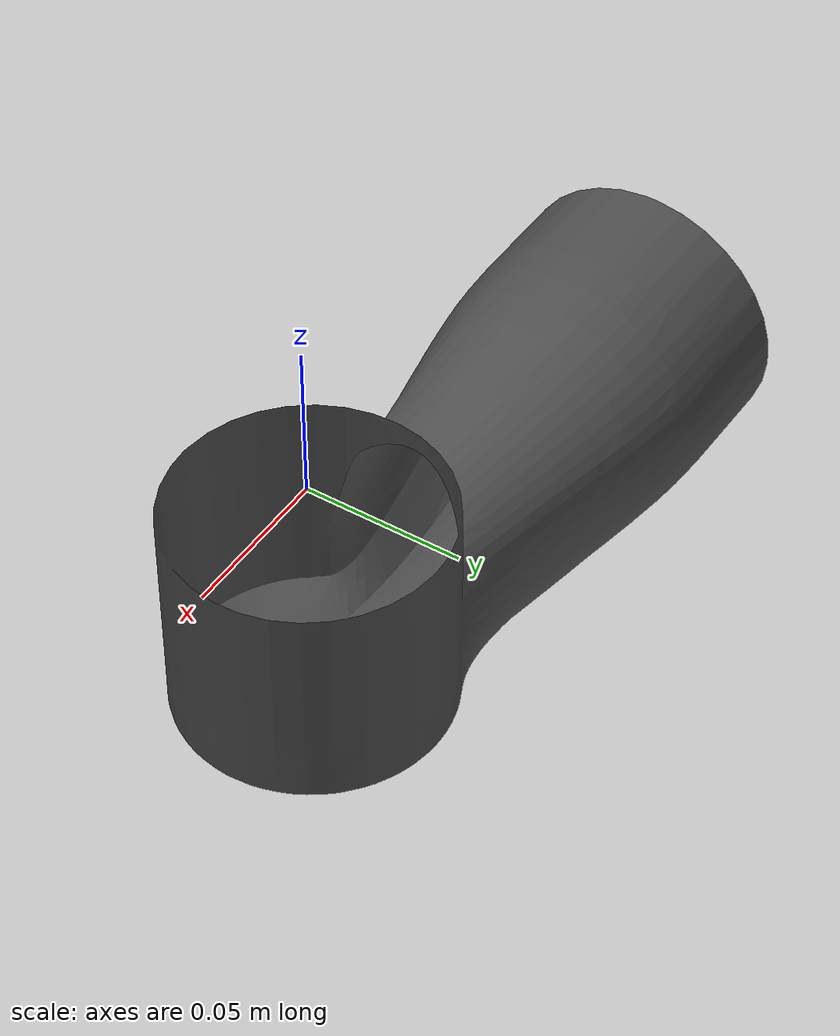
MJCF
<mujoco model="arm4_link">
  <default>
    <default class="visual">
      <geom group="2" type="mesh" contype="0" conaffinity="0"/>
    </default>
    <default class="collision">
      <geom group="3" type="mesh"/>
    </default>
  </default>
  <asset>
    <material name="mtl_arm4_link" specular="0.20000000000000004" shininess="1.0" rgba="0.29803922 0.29803922 0.29803922 1.0"/>
    <mesh file="arm4_link.obj"/>
  </asset>
  <worldbody>
    <body name="arm4_link">
      <geom material="mtl_arm4_link" mesh="arm4_link" class="visual"/>
      <geom mesh="arm4_link" class="collision"/>
    </body>
  </worldbody>
</mujoco>
